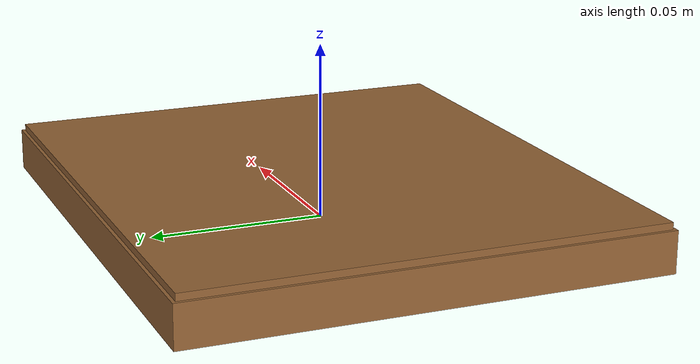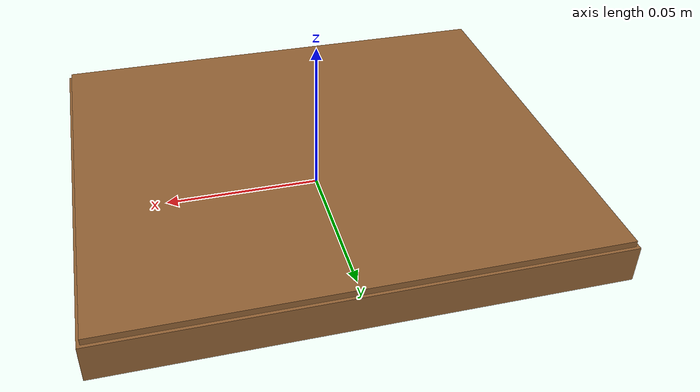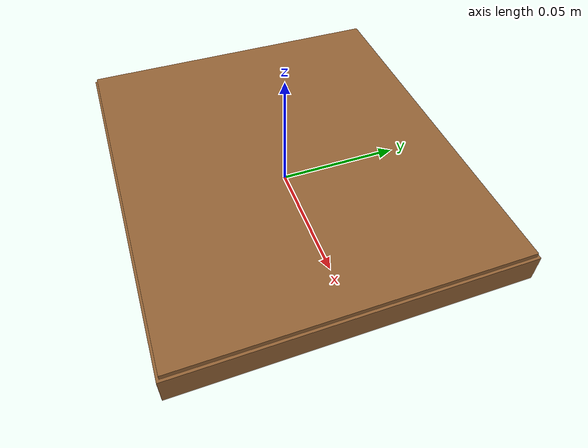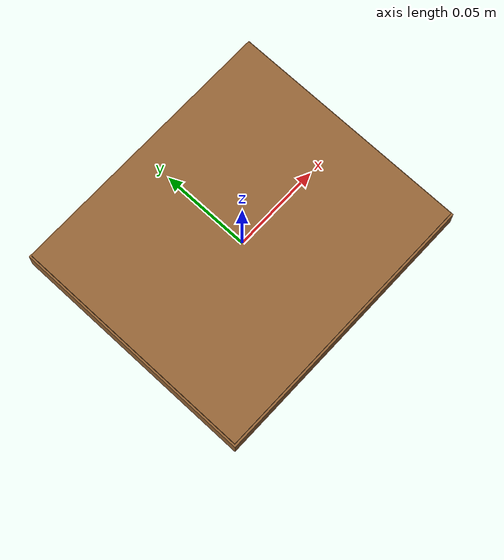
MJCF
<mujoco model="cardboard_lid">
  <asset>
    <material name="cardboard_lid" rgba="0.58 0.39 0.21 1" specular="0.05" shininess="0.04" />
  </asset>
  <worldbody>
    <body>
      <body name="object">
        <geom name="lid_collision" type="box" pos="0 0 0.006" size="0.078 0.068 0.006" material="cardboard_lid" group="0" friction="0.95 0.3 0.1" />
        <geom name="lid_visual" type="box" pos="0 0 0.008" size="0.077 0.067 0.006" material="cardboard_lid" group="1" contype="0" conaffinity="0" />
      </body>
      <site rgba="0 0 0 0" size="0.005" pos="0 0 -0.004" name="bottom_site" />
      <site rgba="0 0 0 0" size="0.005" pos="0 0 0.018" name="top_site" />
      <site rgba="0 0 0 0" size="0.078" pos="0.078 0.078 0" name="horizontal_radius_site" />
    </body>
  </worldbody>
</mujoco>
